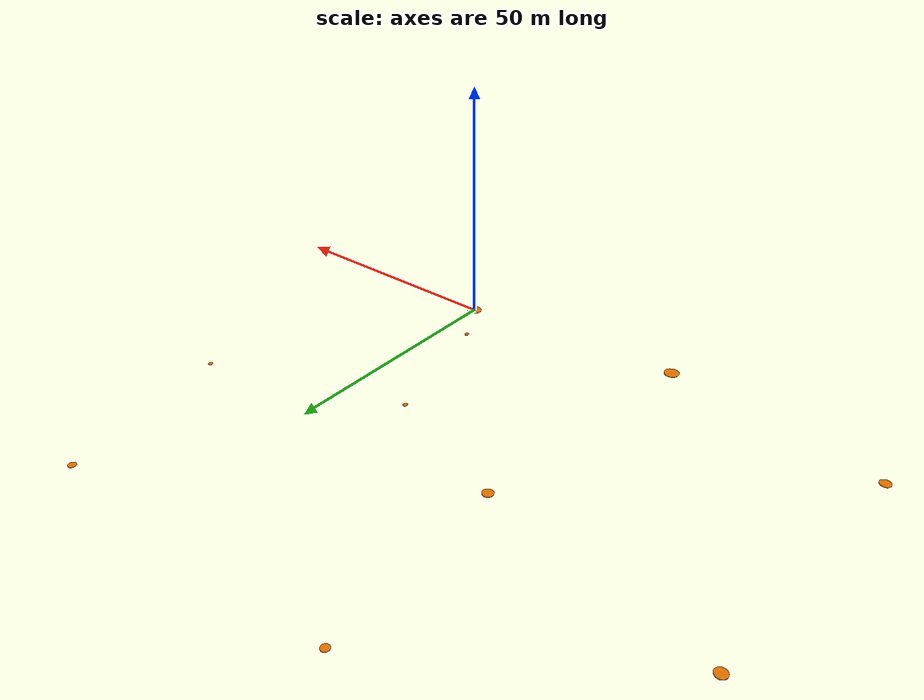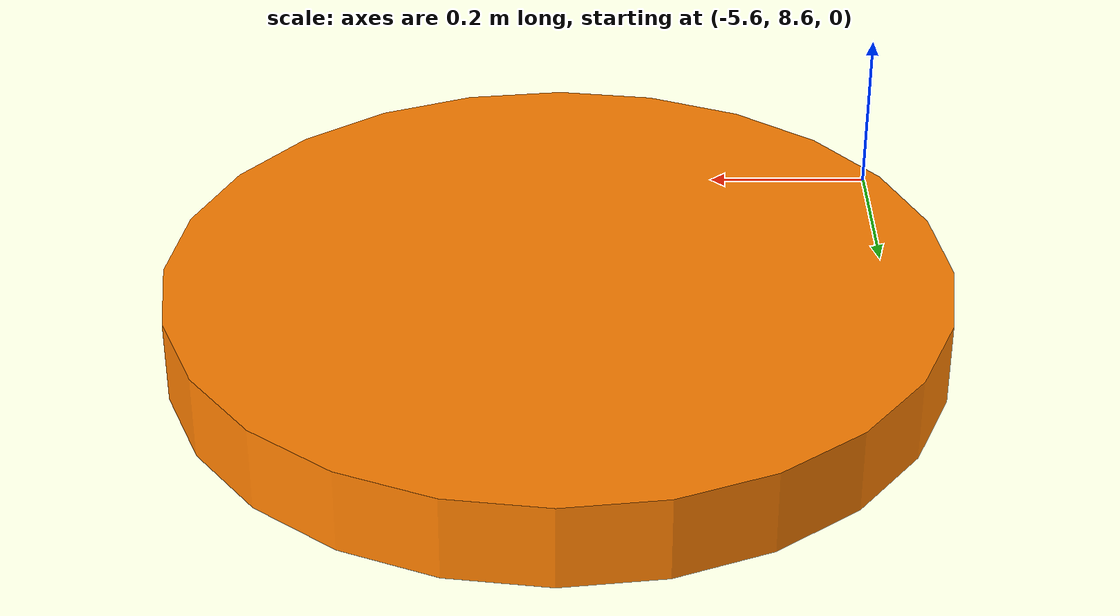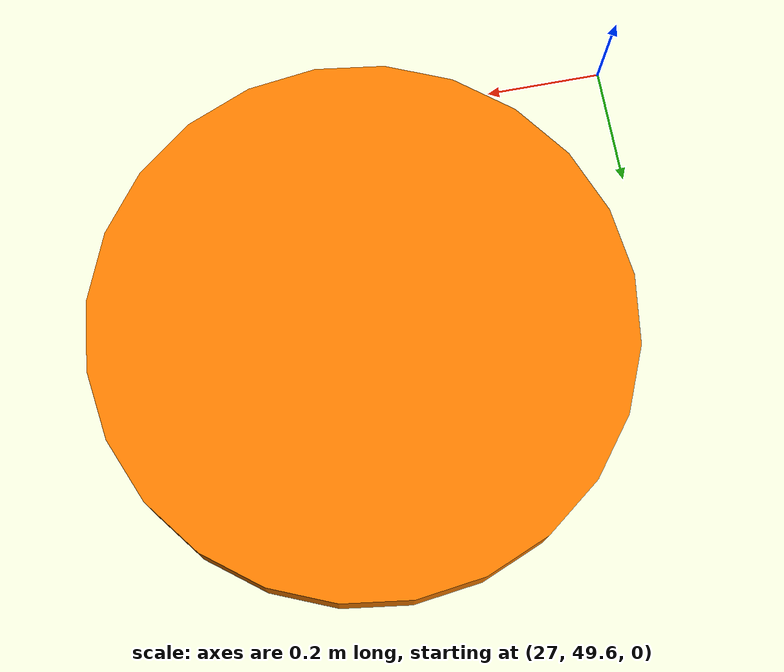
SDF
<sdf version="1.9">
 <world name="map">
  <physics name="1ms" type="ignore">
   <max_step_size>0.001</max_step_size>
   <real_time_factor>1.0</real_time_factor>
  </physics>
  <plugin filename="gz-sim-physics-system" name="gz::sim::systems::Physics"/>
  <plugin filename="gz-sim-sensors-system" name="gz::sim::systems::Sensors">
   <render_engine>ogre2</render_engine>
  </plugin>
  <plugin filename="gz-sim-user-commands-system" name="gz::sim::systems::UserCommands"/>
  <plugin filename="gz-sim-scene-broadcaster-system" name="gz::sim::systems::SceneBroadcaster"/>
  <plugin filename="gz-sim-air-pressure-system" name="gz::sim::systems::AirPressure"/>
  <plugin filename="gz-sim-air-speed-system" name="gz::sim::systems::AirSpeed"/>
  <plugin filename="gz-sim-altimeter-system" name="gz::sim::systems::Altimeter"/>
  <plugin filename="gz-sim-imu-system" name="gz::sim::systems::Imu"/>
  <plugin filename="gz-sim-magnetometer-system" name="gz::sim::systems::Magnetometer"/>
  <plugin filename="gz-sim-navsat-system" name="gz::sim::systems::NavSat"/>
  <scene><ambient>1.0 1.0 1.0</ambient><background>0.8 0.8 0.8</background></scene>
  <light type="directional" name="sun">
   <pose>0 0 10 0 0 0</pose>
   <diffuse>0.8 0.8 0.8 1</diffuse>
   <specular>0.8 0.8 0.8 1</specular>
   <attenuation>
    <range>1000</range>
    <constant>0.9</constant>
    <linear>0.01</linear>
    <quadratic>0.001</quadratic>
   </attenuation>
   <direction>-0.5 0.1 -0.9</direction>
  </light>
  <spherical_coordinates>
   <latitude_deg>-35.3632621</latitude_deg>
   <longitude_deg>149.1652374</longitude_deg>
   <elevation>10.0</elevation>
   <heading_deg>0</heading_deg>
   <surface_model>EARTH_WGS84</surface_model>
  </spherical_coordinates>
  <model name="orange_circle_10_wp0">
   <static>true</static>
   <link name="link">
    <visual name="visual">
     <pose>0 0 0.05 0 0 0</pose>
     <geometry><cylinder><radius>1.524</radius><length>0.1</length></cylinder></geometry>
     <material><ambient>1 0.5 0 1</ambient><diffuse>1 0.5 0 1</diffuse></material>
    </visual>
    <collision name="collision">
     <geometry><cylinder><radius>1.524</radius><length>0.1</length></cylinder></geometry>
    </collision>
   </link>
  </model>
  <model name="orange_circle_10_wp1">
   <static>true</static>
   <link name="link">
    <visual name="visual">
     <pose>-46.0 -4.9 0.05 0 0 0</pose>
     <geometry><cylinder><radius>1.524</radius><length>0.1</length></cylinder></geometry>
     <material><ambient>1 0.5 0 1</ambient><diffuse>1 0.5 0 1</diffuse></material>
    </visual>
    <collision name="collision">
     <geometry><cylinder><radius>1.524</radius><length>0.1</length></cylinder></geometry>
    </collision>
   </link>
  </model>
  <model name="orange_circle_7_wp2">
   <static>true</static>
   <link name="link">
    <visual name="visual">
     <pose>-90.2 2.4 0.05 0 0 0</pose>
     <geometry><cylinder><radius>1.0668</radius><length>0.1</length></cylinder></geometry>
     <material><ambient>1 0.5 0 1</ambient><diffuse>1 0.5 0 1</diffuse></material>
    </visual>
    <collision name="collision">
     <geometry><cylinder><radius>1.0668</radius><length>0.1</length></cylinder></geometry>
    </collision>
   </link>
  </model>
  <model name="orange_circle_7_wp3">
   <static>true</static>
   <link name="link">
    <visual name="visual">
     <pose>-86.4 55.0 0.05 0 0 0</pose>
     <geometry><cylinder><radius>1.0668</radius><length>0.1</length></cylinder></geometry>
     <material><ambient>1 0.5 0 1</ambient><diffuse>1 0.5 0 1</diffuse></material>
    </visual>
    <collision name="collision">
     <geometry><cylinder><radius>1.0668</radius><length>0.1</length></cylinder></geometry>
    </collision>
   </link>
  </model>
  <model name="orange_circle_7_wp4">
   <static>true</static>
   <link name="link">
    <visual name="visual">
     <pose>-40.0 46.0 0.05 0 0 0</pose>
     <geometry><cylinder><radius>1.0668</radius><length>0.1</length></cylinder></geometry>
     <material><ambient>1 0.5 0 1</ambient><diffuse>1 0.5 0 1</diffuse></material>
    </visual>
    <collision name="collision">
     <geometry><cylinder><radius>1.0668</radius><length>0.1</length></cylinder></geometry>
    </collision>
   </link>
  </model>
  <model name="orange_circle_5_wp5">
   <static>true</static>
   <link name="link">
    <visual name="visual">
     <pose>-42.5 85.0 0.05 0 0 0</pose>
     <geometry><cylinder><radius>0.762</radius><length>0.1</length></cylinder></geometry>
     <material><ambient>1 0.5 0 1</ambient><diffuse>1 0.5 0 1</diffuse></material>
    </visual>
    <collision name="collision">
     <geometry><cylinder><radius>0.762</radius><length>0.1</length></cylinder></geometry>
    </collision>
   </link>
  </model>
  <model name="orange_circle_5_wp6">
   <static>true</static>
   <link name="link">
    <visual name="visual">
     <pose>20.0 85.0 0.05 0 0 0</pose>
     <geometry><cylinder><radius>0.762</radius><length>0.1</length></cylinder></geometry>
     <material><ambient>1 0.5 0 1</ambient><diffuse>1 0.5 0 1</diffuse></material>
    </visual>
    <collision name="collision">
     <geometry><cylinder><radius>0.762</radius><length>0.1</length></cylinder></geometry>
    </collision>
   </link>
  </model>
  <model name="orange_circle_3_wp7">
   <static>true</static>
   <link name="link">
    <visual name="visual">
     <pose>27.5 50.0 0.05 0 0 0</pose>
     <geometry><cylinder><radius>0.4572</radius><length>0.1</length></cylinder></geometry>
     <material><ambient>1 0.5 0 1</ambient><diffuse>1 0.5 0 1</diffuse></material>
    </visual>
    <collision name="collision">
     <geometry><cylinder><radius>0.4572</radius><length>0.1</length></cylinder></geometry>
    </collision>
   </link>
  </model>
  <model name="orange_circle_3_wp8">
   <static>true</static>
   <link name="link">
    <visual name="visual">
     <pose>-12.4 36.0 0.05 0 0 0</pose>
     <geometry><cylinder><radius>0.4572</radius><length>0.1</length></cylinder></geometry>
     <material><ambient>1 0.5 0 1</ambient><diffuse>1 0.5 0 1</diffuse></material>
    </visual>
    <collision name="collision">
     <geometry><cylinder><radius>0.4572</radius><length>0.1</length></cylinder></geometry>
    </collision>
   </link>
  </model>
  <model name="orange_circle_3_wp9">
   <static>true</static>
   <link name="link">
    <visual name="visual">
     <pose>-5.2 9.0 0.05 0 0 0</pose>
     <geometry><cylinder><radius>0.4572</radius><length>0.1</length></cylinder></geometry>
     <material><ambient>1 0.5 0 1</ambient><diffuse>1 0.5 0 1</diffuse></material>
    </visual>
    <collision name="collision">
     <geometry><cylinder><radius>0.4572</radius><length>0.1</length></cylinder></geometry>
    </collision>
   </link>
  </model>
 </world>
</sdf>
